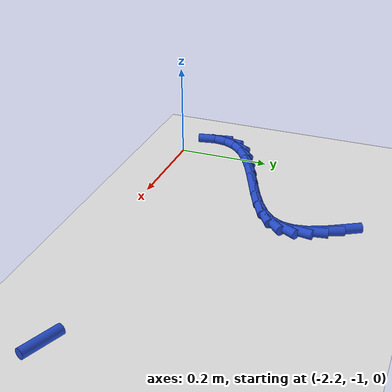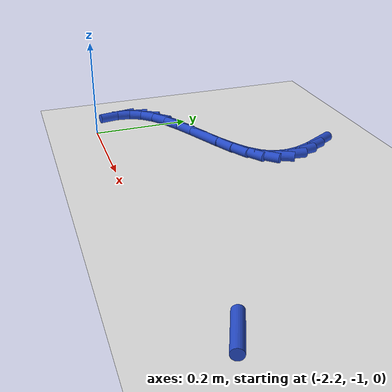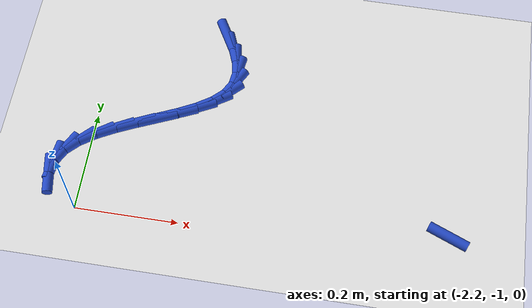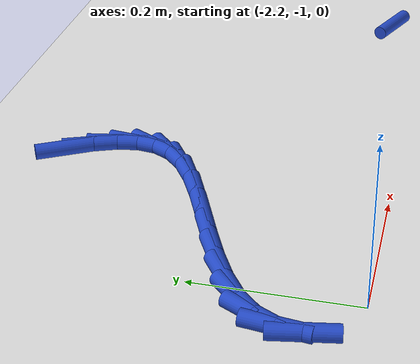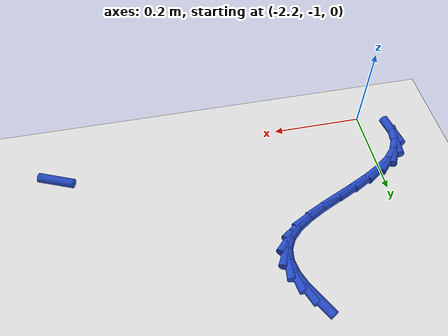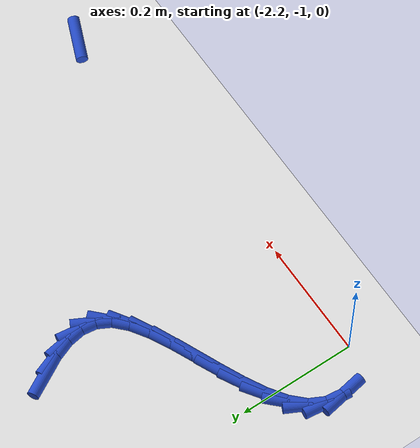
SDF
<sdf version="1.6">
 <world name="default">
  <model name="ground_plane">
   <static>1</static>
   <link name="link">
    <collision name="collision">
     <geometry><plane><normal>0 0 1</normal><size>100 100</size></plane></geometry>
     <surface><friction><ode><mu>100</mu><mu2>50</mu2></ode></friction></surface>
    </collision>
    <visual name="visual">
     <cast_shadows>0</cast_shadows>
     <geometry><plane><normal>0 0 1</normal><size>100 100</size></plane></geometry>
     <material>
      <script><uri>file://media/materials/scripts/gazebo.material</uri><name>Gazebo/WhiteGlow</name></script>
     </material>
    </visual>
   </link>
  </model>
  <model name="line">
   <link name="link_158">
    <pose>-1.9766860186542254 -0.5793797125086462 0.01 0 1.57 -1.0614305695307158</pose>
    <collision name="collision">
     <geometry><cylinder><radius>0.01</radius><length>0.08</length></cylinder></geometry>
    </collision>
    <visual name="visual">
     <material>
      <script><name>Gazebo/Blue</name><uri>file://media/materials/scripts/gazebo.material</uri></script>
     </material>
     <geometry><cylinder><radius>0.01</radius><length>0.08</length></cylinder></geometry>
    </visual>
   </link>
   <link name="link_159">
    <pose>-1.9595076152134414 -0.6101363710155202 0.01 0 1.57 -1.1997512106521548</pose>
    <collision name="collision">
     <geometry><cylinder><radius>0.01</radius><length>0.08</length></cylinder></geometry>
    </collision>
    <visual name="visual">
     <material>
      <script><name>Gazebo/Blue</name><uri>file://media/materials/scripts/gazebo.material</uri></script>
     </material>
     <geometry><cylinder><radius>0.01</radius><length>0.08</length></cylinder></geometry>
    </visual>
   </link>
   <link name="link_160">
    <pose>-1.9481507559250275 -0.6393264301731985 0.01 0 1.57 -1.407202100729121</pose>
    <collision name="collision">
     <geometry><cylinder><radius>0.01</radius><length>0.08</length></cylinder></geometry>
    </collision>
    <visual name="visual">
     <material>
      <script><name>Gazebo/Blue</name><uri>file://media/materials/scripts/gazebo.material</uri></script>
     </material>
     <geometry><cylinder><radius>0.01</radius><length>0.08</length></cylinder></geometry>
    </visual>
   </link>
   <link name="link_161">
    <pose>-1.9436269454244985 -0.6667319285144184 0.01 0 1.57 1.4408108034935967</pose>
    <collision name="collision">
     <geometry><cylinder><radius>0.01</radius><length>0.08</length></cylinder></geometry>
    </collision>
    <visual name="visual">
     <material>
      <script><name>Gazebo/Blue</name><uri>file://media/materials/scripts/gazebo.material</uri></script>
     </material>
     <geometry><cylinder><radius>0.01</radius><length>0.08</length></cylinder></geometry>
    </visual>
   </link>
   <link name="link_162">
    <pose>-1.9469476883473704 -0.6921349045719185 0.01 0 1.57 1.0871480113233798</pose>
    <collision name="collision">
     <geometry><cylinder><radius>0.01</radius><length>0.08</length></cylinder></geometry>
    </collision>
    <visual name="visual">
     <material>
      <script><name>Gazebo/Blue</name><uri>file://media/materials/scripts/gazebo.material</uri></script>
     </material>
     <geometry><cylinder><radius>0.01</radius><length>0.08</length></cylinder></geometry>
    </visual>
   </link>
   <link name="link_163">
    <pose>-1.9591244553198504 -0.7153174056243712 0.01 0 1.57 0.7722126753671091</pose>
    <collision name="collision">
     <geometry><cylinder><radius>0.01</radius><length>0.08</length></cylinder></geometry>
    </collision>
    <visual name="visual">
     <material>
      <script><name>Gazebo/Blue</name><uri>file://media/materials/scripts/gazebo.material</uri></script>
     </material>
     <geometry><cylinder><radius>0.01</radius><length>0.08</length></cylinder></geometry>
    </visual>
   </link>
   <link name="link_164">
    <pose>-1.9805786980642555 -0.7362132099666296 0.01 0 1.57 0.5809959336455571</pose>
    <collision name="collision">
     <geometry><cylinder><radius>0.01</radius><length>0.08</length></cylinder></geometry>
    </collision>
    <visual name="visual">
     <material>
      <script><name>Gazebo/Blue</name><uri>file://media/materials/scripts/gazebo.material</uri></script>
     </material>
     <geometry><cylinder><radius>0.01</radius><length>0.08</length></cylinder></geometry>
    </visual>
   </link>
   <link name="link_165">
    <pose>-2.009639337928272 -0.7552942172283595 0.01 0 1.57 0.4772500158626682</pose>
    <collision name="collision">
     <geometry><cylinder><radius>0.01</radius><length>0.08</length></cylinder></geometry>
    </collision>
    <visual name="visual">
     <material>
      <script><name>Gazebo/Blue</name><uri>file://media/materials/scripts/gazebo.material</uri></script>
     </material>
     <geometry><cylinder><radius>0.01</radius><length>0.08</length></cylinder></geometry>
    </visual>
   </link>
   <link name="link_166">
    <pose>-2.0441716187720425 -0.7731515677210118 0.01 0 1.57 0.4268808246685975</pose>
    <collision name="collision">
     <geometry><cylinder><radius>0.01</radius><length>0.08</length></cylinder></geometry>
    </collision>
    <visual name="visual">
     <material>
      <script><name>Gazebo/Blue</name><uri>file://media/materials/scripts/gazebo.material</uri></script>
     </material>
     <geometry><cylinder><radius>0.01</radius><length>0.08</length></cylinder></geometry>
    </visual>
   </link>
   <link name="link_167">
    <pose>-2.082040784455712 -0.7903764017560365 0.01 0 1.57 0.41433721346754726</pose>
    <collision name="collision">
     <geometry><cylinder><radius>0.01</radius><length>0.08</length></cylinder></geometry>
    </collision>
    <visual name="visual">
     <material>
      <script><name>Gazebo/Blue</name><uri>file://media/materials/scripts/gazebo.material</uri></script>
     </material>
     <geometry><cylinder><radius>0.01</radius><length>0.08</length></cylinder></geometry>
    </visual>
   </link>
   <link name="link_168">
    <pose>-2.1211120788394218 -0.8075598596448839 0.01 0 1.57 0.4352305501842649</pose>
    <collision name="collision">
     <geometry><cylinder><radius>0.01</radius><length>0.08</length></cylinder></geometry>
    </collision>
    <visual name="visual">
     <material>
      <script><name>Gazebo/Blue</name><uri>file://media/materials/scripts/gazebo.material</uri></script>
     </material>
     <geometry><cylinder><radius>0.01</radius><length>0.08</length></cylinder></geometry>
    </visual>
   </link>
   <link name="link_169">
    <pose>-2.159250745783316 -0.8252930816990036 0.01 0 1.57 0.49371121899031584</pose>
    <collision name="collision">
     <geometry><cylinder><radius>0.01</radius><length>0.08</length></cylinder></geometry>
    </collision>
    <visual name="visual">
     <material>
      <script><name>Gazebo/Blue</name><uri>file://media/materials/scripts/gazebo.material</uri></script>
     </material>
     <geometry><cylinder><radius>0.01</radius><length>0.08</length></cylinder></geometry>
    </visual>
   </link>
   <link name="link_170">
    <pose>-2.194322029147538 -0.8441672082298458 0.01 0 1.57 0.6039027332018935</pose>
    <collision name="collision">
     <geometry><cylinder><radius>0.01</radius><length>0.08</length></cylinder></geometry>
    </collision>
    <visual name="visual">
     <material>
      <script><name>Gazebo/Blue</name><uri>file://media/materials/scripts/gazebo.material</uri></script>
     </material>
     <geometry><cylinder><radius>0.01</radius><length>0.08</length></cylinder></geometry>
    </visual>
   </link>
   <link name="link_171">
    <pose>-2.2241911727922297 -0.8647733795488607 0.01 0 1.57 0.7941329746924749</pose>
    <collision name="collision">
     <geometry><cylinder><radius>0.01</radius><length>0.08</length></cylinder></geometry>
    </collision>
    <visual name="visual">
     <material>
      <script><name>Gazebo/Blue</name><uri>file://media/materials/scripts/gazebo.material</uri></script>
     </material>
     <geometry><cylinder><radius>0.01</radius><length>0.08</length></cylinder></geometry>
    </visual>
   </link>
   <link name="link_172">
    <pose>-2.2467234205775353 -0.8877027359674979 0.01 0 1.57 1.0974835573946236</pose>
    <collision name="collision">
     <geometry><cylinder><radius>0.01</radius><length>0.08</length></cylinder></geometry>
    </collision>
    <visual name="visual">
     <material>
      <script><name>Gazebo/Blue</name><uri>file://media/materials/scripts/gazebo.material</uri></script>
     </material>
     <geometry><cylinder><radius>0.01</radius><length>0.08</length></cylinder></geometry>
    </visual>
   </link>
   <link name="link_173">
    <pose>-2.2599269292029427 -0.9134837641518373 0.01 0 1.57 1.4456568417247946</pose>
    <collision name="collision">
     <geometry><cylinder><radius>0.01</radius><length>0.08</length></cylinder></geometry>
    </collision>
    <visual name="visual">
     <material>
      <script><name>Gazebo/Blue</name><uri>file://media/materials/scripts/gazebo.material</uri></script>
     </material>
     <geometry><cylinder><radius>0.01</radius><length>0.08</length></cylinder></geometry>
    </visual>
   </link>
   <link name="link_174">
    <pose>-2.2635019927188824 -0.9419031099788956 0.01 0 1.57 -1.399669451463141</pose>
    <collision name="collision">
     <geometry><cylinder><radius>0.01</radius><length>0.08</length></cylinder></geometry>
    </collision>
    <visual name="visual">
     <material>
      <script><name>Gazebo/Blue</name><uri>file://media/materials/scripts/gazebo.material</uri></script>
     </material>
     <geometry><cylinder><radius>0.01</radius><length>0.08</length></cylinder></geometry>
    </visual>
   </link>
   <link name="link_198">
    <pose>-1.4991879051069041 -0.9503474887754699 0.01 0 1.57 -0.3908385947084675</pose>
    <collision name="collision">
     <geometry><cylinder><radius>0.01</radius><length>0.08</length></cylinder></geometry>
    </collision>
    <visual name="visual">
     <material>
      <script><name>Gazebo/Blue</name><uri>file://media/materials/scripts/gazebo.material</uri></script>
     </material>
     <geometry><cylinder><radius>0.01</radius><length>0.08</length></cylinder></geometry>
    </visual>
   </link>
  </model>
 </world>
</sdf>
